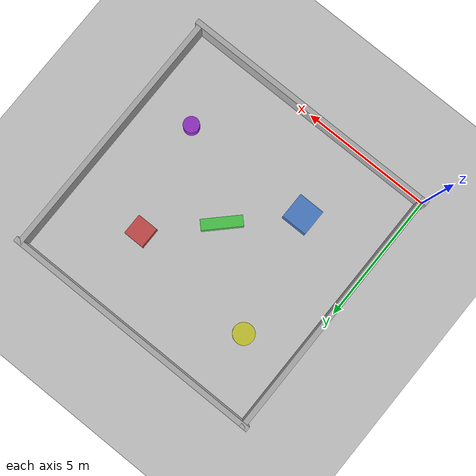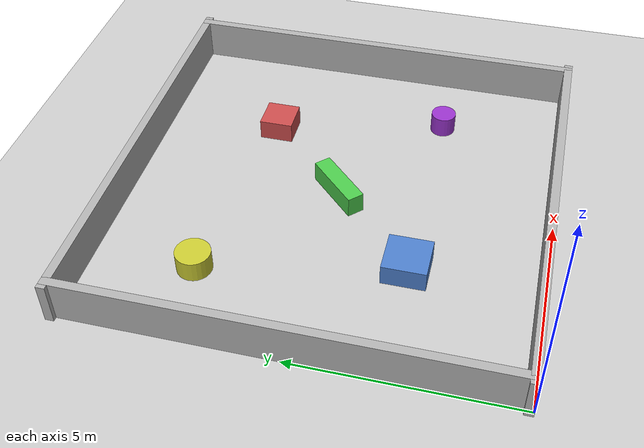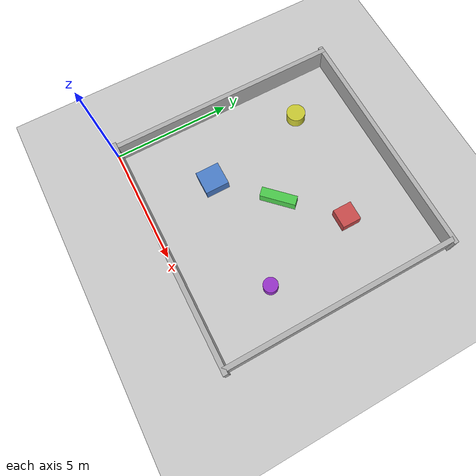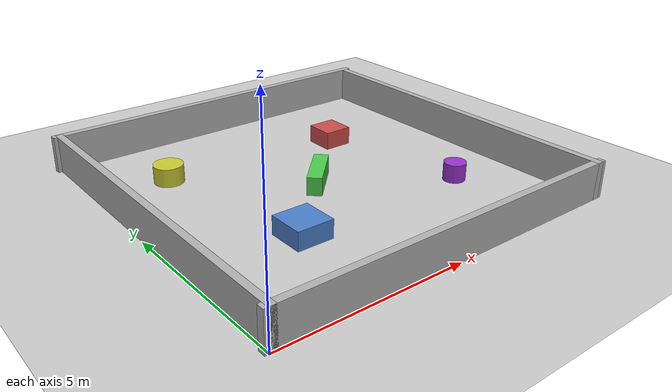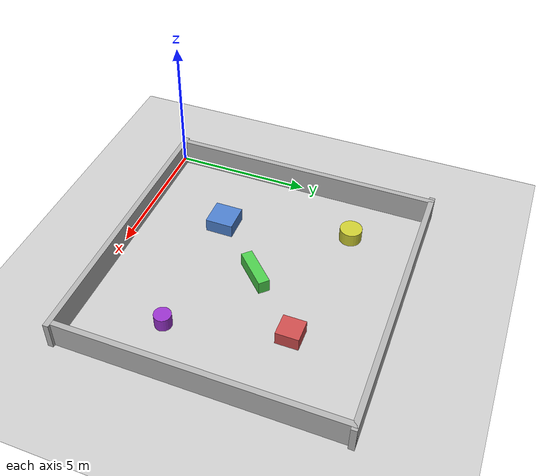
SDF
<?xml version="1.0" ?>
<!--
  Room with static obstacles for sweeping robot simulation.
  Room dimensions: 10 m × 10 m, with several box obstacles.
-->
<sdf version="1.6">
  <world name="room_with_obstacles">

    <physics name="default_physics" type="ode">
      <max_step_size>0.001</max_step_size>
      <real_time_factor>1</real_time_factor>
      <real_time_update_rate>1000</real_time_update_rate>
    </physics>

    <plugin name="gazebo_ros_state" filename="libgazebo_ros_state.so">
      <ros><namespace>/gazebo</namespace></ros>
      <update_rate>10.0</update_rate>
    </plugin>

    <light name="sun" type="directional">
      <cast_shadows>true</cast_shadows>
      <pose>0 0 10 0 -0 0</pose>
      <diffuse>1 1 1 1</diffuse>
      <specular>0.5 0.5 0.5 1</specular>
      <attenuation>
        <range>1000</range>
        <constant>0.9</constant>
        <linear>0.01</linear>
        <quadratic>0.001</quadratic>
      </attenuation>
      <direction>-0.5 0.1 -0.9</direction>
    </light>

    <model name="ground_plane">
      <static>true</static>
      <link name="link">
        <collision name="collision">
          <geometry><plane><normal>0 0 1</normal><size>100 100</size></plane></geometry>
        </collision>
        <visual name="visual">
          <geometry><plane><normal>0 0 1</normal><size>100 100</size></plane></geometry>
          <material><ambient>0.8 0.8 0.8 1</ambient></material>
        </visual>
      </link>
    </model>

    <!-- Room walls (same as empty_room) -->
    <model name="south_wall">
      <static>true</static><pose>5 0.1 0.5 0 0 0</pose>
      <link name="link">
        <collision name="collision"><geometry><box><size>10.2 0.2 1.0</size></box></geometry></collision>
        <visual name="visual"><geometry><box><size>10.2 0.2 1.0</size></box></geometry><material><ambient>0.7 0.7 0.7 1</ambient></material></visual>
      </link>
    </model>
    <model name="north_wall">
      <static>true</static><pose>5 9.9 0.5 0 0 0</pose>
      <link name="link">
        <collision name="collision"><geometry><box><size>10.2 0.2 1.0</size></box></geometry></collision>
        <visual name="visual"><geometry><box><size>10.2 0.2 1.0</size></box></geometry><material><ambient>0.7 0.7 0.7 1</ambient></material></visual>
      </link>
    </model>
    <model name="west_wall">
      <static>true</static><pose>0.1 5 0.5 0 0 0</pose>
      <link name="link">
        <collision name="collision"><geometry><box><size>0.2 10.0 1.0</size></box></geometry></collision>
        <visual name="visual"><geometry><box><size>0.2 10.0 1.0</size></box></geometry><material><ambient>0.7 0.7 0.7 1</ambient></material></visual>
      </link>
    </model>
    <model name="east_wall">
      <static>true</static><pose>9.9 5 0.5 0 0 0</pose>
      <link name="link">
        <collision name="collision"><geometry><box><size>0.2 10.0 1.0</size></box></geometry></collision>
        <visual name="visual"><geometry><box><size>0.2 10.0 1.0</size></box></geometry><material><ambient>0.7 0.7 0.7 1</ambient></material></visual>
      </link>
    </model>

    <!-- Static obstacles -->
    <model name="obstacle_1">
      <static>true</static>
      <pose>3.0 3.0 0.25 0 0 0</pose>
      <link name="link">
        <collision name="collision"><geometry><box><size>1.0 1.0 0.5</size></box></geometry></collision>
        <visual name="visual">
          <geometry><box><size>1.0 1.0 0.5</size></box></geometry>
          <material><ambient>0.3 0.5 0.8 1</ambient></material>
        </visual>
      </link>
    </model>

    <model name="obstacle_2">
      <static>true</static>
      <pose>7.0 7.0 0.25 0 0 0</pose>
      <link name="link">
        <collision name="collision"><geometry><box><size>0.8 0.8 0.5</size></box></geometry></collision>
        <visual name="visual">
          <geometry><box><size>0.8 0.8 0.5</size></box></geometry>
          <material><ambient>0.8 0.3 0.3 1</ambient></material>
        </visual>
      </link>
    </model>

    <model name="obstacle_3">
      <static>true</static>
      <pose>5.0 5.0 0.25 0 0 0.785</pose>
      <link name="link">
        <collision name="collision"><geometry><box><size>1.5 0.4 0.5</size></box></geometry></collision>
        <visual name="visual">
          <geometry><box><size>1.5 0.4 0.5</size></box></geometry>
          <material><ambient>0.3 0.8 0.3 1</ambient></material>
        </visual>
      </link>
    </model>

    <model name="obstacle_4">
      <static>true</static>
      <pose>2.0 7.5 0.25 0 0 0</pose>
      <link name="link">
        <collision name="collision"><geometry><cylinder><radius>0.4</radius><length>0.5</length></cylinder></geometry></collision>
        <visual name="visual">
          <geometry><cylinder><radius>0.4</radius><length>0.5</length></cylinder></geometry>
          <material><ambient>0.8 0.8 0.2 1</ambient></material>
        </visual>
      </link>
    </model>

    <model name="obstacle_5">
      <static>true</static>
      <pose>8.0 3.0 0.25 0 0 0</pose>
      <link name="link">
        <collision name="collision"><geometry><cylinder><radius>0.3</radius><length>0.5</length></cylinder></geometry></collision>
        <visual name="visual">
          <geometry><cylinder><radius>0.3</radius><length>0.5</length></cylinder></geometry>
          <material><ambient>0.6 0.2 0.8 1</ambient></material>
        </visual>
      </link>
    </model>

  </world>
</sdf>
